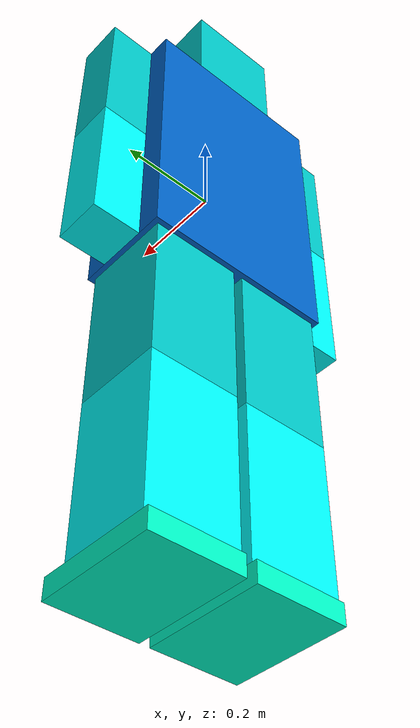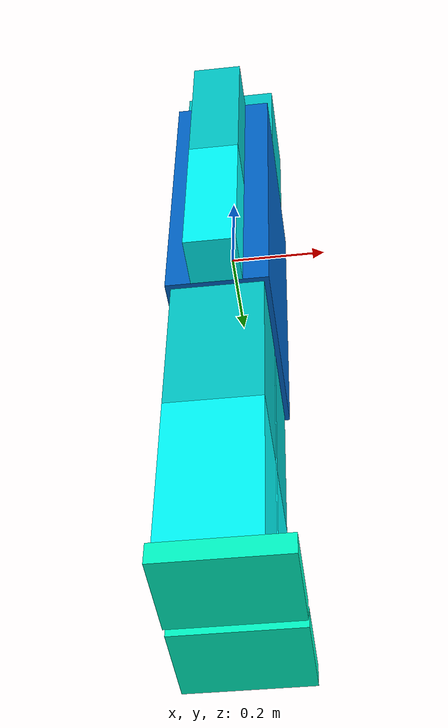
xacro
<?xml version="1.0"?>
<robot name="myfirst"  xmlns:xacro="http://ros.org/wiki/xacro">

  <xacro:property name="thickness" value="0.2" />
  <xacro:property name="bodylen" value="0.6" />
  <xacro:property name="bodywidth" value="0.4" />
  <xacro:property name="joint_size" value="0.01"/>
  <xacro:property name="arm_width" value="0.1"/>
  <xacro:property name="arm_len" value="0.3"/>
  <xacro:property name="leg_width" value="0.18"/>
  <xacro:property name="leg_len" value="0.3"/>

  <xacro:property name="foot_len" value="0.24"/>
  <xacro:property name="foot_width" value="0.18"/>
  <xacro:property name="foot_high" value="0.04"/>

  <xacro:property name="head_mass" value="8.26"/>
  <xacro:property name="body_mass" value="43.46"/>
  <xacro:property name="upper_arm_mass" value="2.71"/>
  <xacro:property name="lower_arm_mass" value="2.23"/>
  <xacro:property name="upper_leg_mass" value="14.16"/>
  <xacro:property name="lower_leg_mass" value="4.33"/>
  <xacro:property name="foot_mass" value="1.37"/>

  <material name="color1">
    <color rgba="0 0.4 0.8 1"/>
  </material>

  <material name="color2">
    <color rgba="0 0.8 0.8 1"/>
  </material>

  <material name="color3">
    <color rgba="0 1 1 1"/>
  </material>

  <material name="color4">
    <color rgba="0 1 0.8 1"/>
  </material>

  <xacro:macro name="default_inertial" params="mass">
    <inertial>
      <mass value="${mass}" />
      <inertia ixx="1.0" ixy="0.0" ixz="0.0" iyy="1.0" iyz="0.0" izz="1.0" />
    </inertial>
  </xacro:macro>

  <link name="base_link">
    <visual>
      <geometry>
        <box size="${thickness} ${bodywidth} ${bodylen}"/>
      </geometry>
      <material name="color1"/>
    </visual>
    <collision>
      <geometry>
        <box size="${thickness} ${bodywidth} ${bodylen}"/>
      </geometry>
    </collision>
    <xacro:default_inertial mass="${body_mass}"/>
  </link>

  <link name="head">
    <visual>
      <geometry>
        <box size="${thickness} ${thickness} ${thickness}"/>
      </geometry>
      <material name="color2"/>
    </visual>
    <collision>
      <geometry>
        <box size="${thickness} ${thickness} ${thickness}"/>
      </geometry>
    </collision>
    <xacro:default_inertial mass="${head_mass}"/>
  </link>

  <joint name="body_to_head" type="revolute">
    <parent link="base_link"/>
    <child link="head"/>
    <axis xyz="0 0 1"/>
    <limit effort="1000.0" lower="-0.5" upper="0.5" velocity="0.5"/>
    <origin xyz="0 0 0.4"/>
  </joint>

  <transmission name="body_to_head_trans">
    <type>transmission_interface/SimpleTransmission</type>
    <actuator name="body_to_head_motor">
      <mechanicalReduction>1</mechanicalReduction>
    </actuator>
    <joint name="body_to_head">
      <hardwareInterface>hardware_interface/VelocityJointInterface</hardwareInterface>
    </joint>
  </transmission>

  <xacro:macro name="shoulder" params="prefix reflect">
    <link name="${prefix}_shoulder">
      <visual>
        <geometry>
          <box size="${joint_size} ${joint_size} ${joint_size}"/>
        </geometry>
        <origin xyz="0 0.0 0.0"/>
        <material name="color2"/>
      </visual>
      <collision>
        <geometry>
          <box size="${joint_size} ${joint_size} ${joint_size}"/>
        </geometry>
      </collision>
      <xacro:default_inertial mass="0.01"/>
    </link>

    <joint name="body_to_${prefix}_shoulder" type="revolute">
      <parent link="base_link"/>
      <child link="${prefix}_shoulder"/>
      <axis xyz="1 0 0"/>
      <limit effort="1000.0" lower="${-((reflect+1)/2)*2.7}" upper="${-((reflect-1)/2)*2.7}" velocity="0.5"/>
      <origin xyz="0 ${-0.2*reflect} 0.3"/>
    </joint>
    <transmission name="body_to_${prefix}_shoulder_trans">
      <type>transmission_interface/SimpleTransmission</type>
      <actuator name="body_to_${prefix}_shoulder_motor">
        <mechanicalReduction>1</mechanicalReduction>
      </actuator>
      <joint name="body_to_${prefix}_shoulder">
        <hardwareInterface>hardware_interface/VelocityJointInterface</hardwareInterface>
      </joint>
    </transmission>

  </xacro:macro>
  <xacro:shoulder prefix="right" reflect="1" />
  <xacro:shoulder prefix="left" reflect="-1" />

  <xacro:macro name="arm" params="prefix reflect">
    <link name="${prefix}_up_arm">
      <visual>
        <geometry>
          <box size="${arm_width} ${arm_width} ${arm_len}"/>
        </geometry>
        <origin xyz="0 ${-0.05*reflect} -0.15"/>
        <material name="color2"/>
      </visual>
      <collision>
        <geometry>
          <box size="${arm_width} ${arm_width} ${arm_len}"/>
        </geometry>
      </collision>
      <xacro:default_inertial mass="${upper_arm_mass}"/>
    </link>

    <link name="${prefix}_down_arm">
      <visual>
        <geometry>
          <box size="${arm_width} ${arm_width} ${arm_len}"/>
        </geometry>
        <origin xyz="0 0 -0.15"/>
        <material name="color3"/>
      </visual>
      <collision>
        <geometry>
          <box size="${arm_width} ${arm_width} ${arm_len}"/>
        </geometry>
      </collision>
      <xacro:default_inertial mass="${lower_arm_mass}"/>
    </link>

    <joint name="${prefix}_shoulder_to_${prefix}_up_arm" type="revolute">
      <parent link="${prefix}_shoulder"/>
      <child link="${prefix}_up_arm"/>
      <axis xyz="0 1 0"/>
      <limit effort="1000.0" lower="-2.7" upper="0.7" velocity="0.5"/>
      <origin xyz="0 0.0 0"/>
    </joint>

     <transmission name="${prefix}_shoulder_to_${prefix}_up_arm_trans">
      <type>transmission_interface/SimpleTransmission</type>
      <actuator name="${prefix}_shoulder_to_${prefix}_up_arm_motor">
        <mechanicalReduction>1</mechanicalReduction>
      </actuator>
      <joint name="${prefix}_shoulder_to_${prefix}_up_arm">
        <hardwareInterface>hardware_interface/VelocityJointInterface</hardwareInterface>
      </joint>
    </transmission>

    <joint name="${prefix}_up_arm_to_${prefix}_down_arm" type="revolute">
      <parent link="${prefix}_up_arm"/>
      <child link="${prefix}_down_arm"/>
       <axis xyz="0 1 0"/>
      <limit effort="1000.0" lower="-2.7" upper="0.5"
      velocity="0.5"/>
      <origin xyz="0 ${-0.05*reflect} -0.3"/>
    </joint>

    <transmission name="${prefix}_up_arm_to_${prefix}_down_arm_trans">
      <type>transmission_interface/SimpleTransmission</type>
      <actuator name="${prefix}_up_arm_to_${prefix}_down_arm_motor">
        <mechanicalReduction>1</mechanicalReduction>
      </actuator>
      <joint name="${prefix}_up_arm_to_${prefix}_down_arm">
        <hardwareInterface>hardware_interface/VelocityJointInterface</hardwareInterface>
      </joint>
    </transmission>

  </xacro:macro>
  <xacro:arm prefix="right" reflect="1" />
  <xacro:arm prefix="left" reflect="-1" />

  <xacro:macro name="leg" params="prefix reflect">

    <link name="${prefix}_leg_joint">
      <visual>
        <geometry>
          <box size="${joint_size} ${joint_size} ${joint_size}"/>
        </geometry>
        <origin xyz="0 0.0 0.0"/>
        <material name="color2"/>
      </visual>
      <collision>
        <geometry>
          <box size="${joint_size} ${joint_size} ${joint_size}"/>
        </geometry>
      </collision>
      <xacro:default_inertial mass="0.01"/>
    </link>

    <link name="${prefix}_up_leg">
      <visual>
        <geometry>
          <box size="${leg_width} ${leg_width} ${leg_len}"/>
        </geometry>
        <origin xyz="0 0 -0.15"/>
        <material name="color2"/>
      </visual>
      <collision>
        <geometry>
          <box size="${leg_width} ${leg_width} ${leg_len}"/>
        </geometry>
      </collision>
      <xacro:default_inertial mass="${upper_leg_mass}"/>
    </link>

    <link name="${prefix}_down_leg">
      <visual>
        <geometry>
          <box size="${leg_width} ${leg_width} ${leg_len}"/>
        </geometry>
        <origin xyz="0 0 -0.15"/>
        <material name="color3"/>
      </visual>
      <collision>
        <geometry>
          <box size="${leg_width} ${leg_width} ${leg_len}"/>
        </geometry>
      </collision>
      <xacro:default_inertial mass="${lower_leg_mass}"/>
    </link>

    <link name="${prefix}_foot">
      <visual>
        <geometry>
          <box size="${foot_len} ${foot_width} ${foot_high}"/>
        </geometry>
        <origin xyz="0.02 0 -0.02"/>
        <material name="color4"/>
      </visual>
      <collision>
        <geometry>
          <box size="${foot_len} ${foot_width} ${foot_high}"/>
        </geometry>
      </collision>
      <xacro:default_inertial mass="${foot_mass}"/>
    </link>

    <joint name="body_to_${prefix}_leg_joint" type="revolute">
      <parent link="base_link"/>
      <child link="${prefix}_leg_joint"/>
      <axis xyz="1 0 0"/>
      <limit effort="1000.0" lower="${-((reflect+1)/2)*2.7}" upper="${-((reflect-1)/2)*2.7}" velocity="0.5"/>
      <origin xyz="0 ${-0.1*reflect} -0.3"/>
    </joint>

    <transmission name="body_to_${prefix}_leg_joint_trans">
      <type>transmission_interface/SimpleTransmission</type>
      <actuator name="body_to_${prefix}_leg_joint_motor">
        <mechanicalReduction>1</mechanicalReduction>
      </actuator>
      <joint name="body_to_${prefix}_leg_joint">
        <hardwareInterface>hardware_interface/VelocityJointInterface</hardwareInterface>
      </joint>
    </transmission>

    <joint name="${prefix}_leg_joint_to_${prefix}_up_leg" type="revolute">
      <parent link="${prefix}_leg_joint"/>
      <child link="${prefix}_up_leg"/>
      <origin xyz="0 0.0 0"/>
      <axis xyz="0 1 0"/>
      <limit effort="1000.0" lower="-2" upper="1.0"
      velocity="0.5"/>
    </joint>

    <transmission name="${prefix}_leg_joint_to_${prefix}_up_leg_trans">
      <type>transmission_interface/SimpleTransmission</type>
      <actuator name="${prefix}_leg_joint_to_${prefix}_up_leg_motor">
        <mechanicalReduction>1</mechanicalReduction>
      </actuator>
      <joint name="${prefix}_leg_joint_to_${prefix}_up_leg">
        <hardwareInterface>hardware_interface/VelocityJointInterface</hardwareInterface>
      </joint>
    </transmission>

    <joint name="${prefix}_up_leg_to_${prefix}_down_leg" type="revolute">
      <parent link="${prefix}_up_leg"/>
      <child link="${prefix}_down_leg"/>
      <axis xyz="0 1 0"/>
      <limit effort="1000.0" lower="-0.1" upper="2.0"
      velocity="0.5"/>
      <origin xyz="0 0 -0.3"/>
    </joint>

    <transmission name="${prefix}_up_leg_to_${prefix}_down_leg_trans">
      <type>transmission_interface/SimpleTransmission</type>
      <actuator name="${prefix}_up_leg_to_${prefix}_down_leg_motor">
        <mechanicalReduction>1</mechanicalReduction>
      </actuator>
      <joint name="${prefix}_up_leg_to_${prefix}_down_leg">
        <hardwareInterface>hardware_interface/VelocityJointInterface</hardwareInterface>
      </joint>
    </transmission>

    <joint name="${prefix}_down_leg_to_${prefix}_foot" type="revolute">
      <parent link="${prefix}_down_leg"/>
      <child link="${prefix}_foot"/>
      <axis xyz="0 1 0"/>
      <limit effort="1000.0" lower="-0.5" upper="1.0"
      velocity="0.5"/>
      <origin xyz="0 0 -0.3"/>
    </joint>

    <transmission name="${prefix}_down_leg_to_${prefix}_foot">
      <type>transmission_interface/SimpleTransmission</type>
      <actuator name="${prefix}_down_leg_to_${prefix}_foot">
        <mechanicalReduction>1</mechanicalReduction>
      </actuator>
      <joint name="${prefix}_down_leg_to_${prefix}_foot">
        <hardwareInterface>hardware_interface/VelocityJointInterface</hardwareInterface>
      </joint>
    </transmission>

  </xacro:macro>
  <xacro:leg prefix="right" reflect="1" />
  <xacro:leg prefix="left" reflect="-1" />

  <gazebo>
    <plugin name="gazebo_ros_control" filename="libgazebo_ros_control.so">
      <robotNamespace>/</robotNamespace>
    </plugin>
  </gazebo>
</robot>
